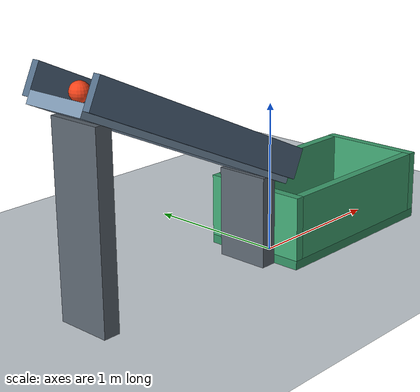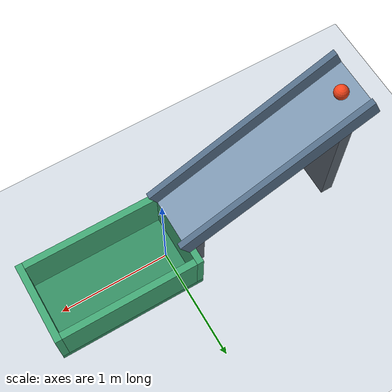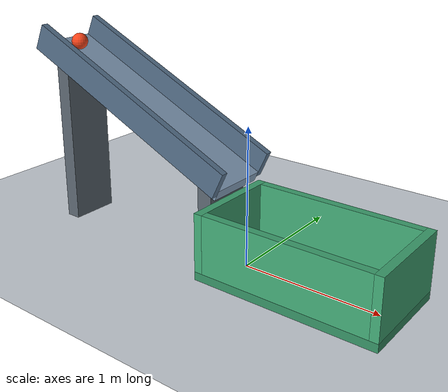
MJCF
<mujoco model="ball_ramp_cup">
  <compiler angle="degree"/>
  <option timestep="0.002" gravity="0 0 -9.81" integrator="implicitfast" solver="Newton" iterations="80" tolerance="1e-10"/>

  <visual>
    <headlight ambient="0.35 0.35 0.35" diffuse="0.65 0.65 0.65" specular="0.2 0.2 0.2"/>
    <map znear="0.01" zfar="30"/>
  </visual>

  <worldbody>
    <light name="overhead" pos="-1 -2 4" dir="0.2 0.3 -1" diffuse="0.8 0.8 0.8"/>
    <camera name="overview" pos="2.5 -4 2.6" xyaxes="0.8 0.6 0 -0.24 0.32 0.9165"/>

    <geom name="floor" type="plane" pos="0 0 0" size="5 4 0.1" rgba="0.82 0.85 0.88 1" friction="0.9 0.01 0.01" condim="6"/>

    <!-- The ramp slopes downward in the positive x direction. -->
    <body name="ramp" pos="-0.9 0 0.95" euler="0 25 0">
      <geom name="ramp_surface" type="box" pos="0 0 0" size="0.9 0.22 0.04" rgba="0.48 0.58 0.68 1" friction="0.8 0.01 0.005" condim="6" solref="0.015 1" solimp="0.95 0.99 0.001"/>
      <geom name="ramp_rail_left" type="box" pos="0 0.245 0.10" size="0.9 0.025 0.10" rgba="0.32 0.42 0.52 1" friction="0.8 0.01 0.005" condim="6"/>
      <geom name="ramp_rail_right" type="box" pos="0 -0.245 0.10" size="0.9 0.025 0.10" rgba="0.32 0.42 0.52 1" friction="0.8 0.01 0.005" condim="6"/>
    </body>

    <geom name="ramp_support_high" type="box" pos="-1.55 0 0.6075" size="0.055 0.18 0.6075" rgba="0.35 0.39 0.43 1"/>
    <geom name="ramp_support_low" type="box" pos="-0.22 0 0.30" size="0.055 0.18 0.30" rgba="0.35 0.39 0.43 1"/>

    <!-- An open rectangular cup. Its entrance rim is below the ramp exit. -->
    <body name="cup" pos="0.5 0 0">
      <geom name="cup_bottom" type="box" pos="0 0 0.03" size="0.66 0.36 0.03" rgba="0.20 0.55 0.38 1" friction="1.0 0.02 0.02" condim="6" solref="0.03 1" solimp="0.95 0.99 0.001"/>
      <geom name="cup_front" type="box" pos="-0.63 0 0.27" size="0.03 0.36 0.21" rgba="0.25 0.65 0.45 1" friction="1.0 0.02 0.02" condim="6" solref="0.03 1" solimp="0.95 0.99 0.001"/>
      <geom name="cup_back" type="box" pos="0.63 0 0.27" size="0.03 0.36 0.21" rgba="0.25 0.65 0.45 1" friction="1.0 0.02 0.02" condim="6" solref="0.03 1" solimp="0.95 0.99 0.001"/>
      <geom name="cup_left" type="box" pos="0 0.33 0.27" size="0.60 0.03 0.21" rgba="0.25 0.65 0.45 1" friction="1.0 0.02 0.02" condim="6" solref="0.03 1" solimp="0.95 0.99 0.001"/>
      <geom name="cup_right" type="box" pos="0 -0.33 0.27" size="0.60 0.03 0.21" rgba="0.25 0.65 0.45 1" friction="1.0 0.02 0.02" condim="6" solref="0.03 1" solimp="0.95 0.99 0.001"/>
    </body>

    <body name="ball" pos="-1.54632 0 1.36227">
      <freejoint/>
      <geom name="ball" type="sphere" size="0.06" mass="0.12" rgba="0.95 0.26 0.10 1" friction="0.8 0.01 0.005" condim="6" solref="0.015 1" solimp="0.95 0.99 0.001"/>
    </body>
  </worldbody>

  <keyframe>
    <key name="start" qpos="-1.54632 0 1.36227 1 0 0 0" qvel="0 0 0 0 0 0"/>
  </keyframe>
</mujoco>
